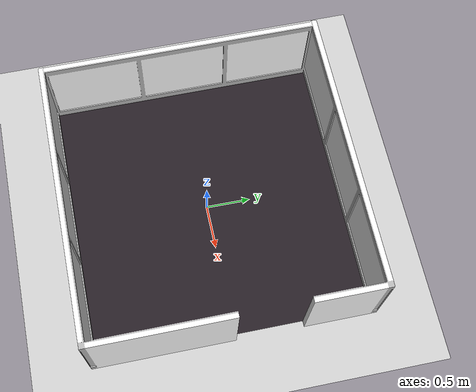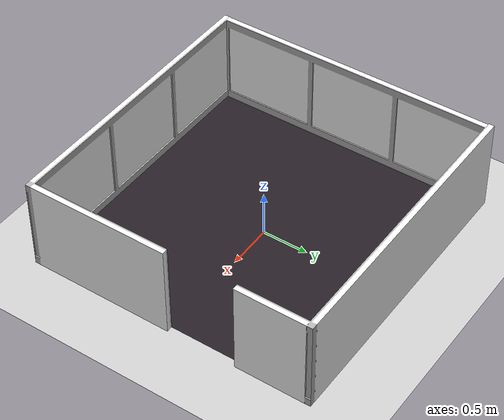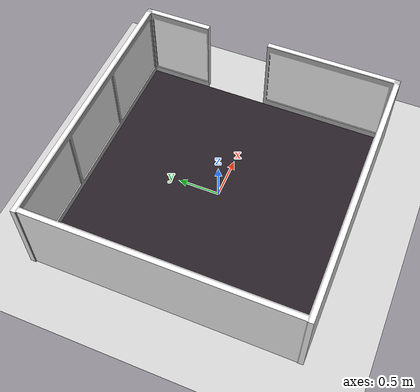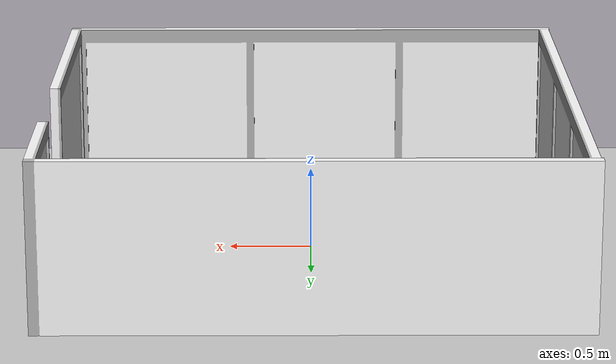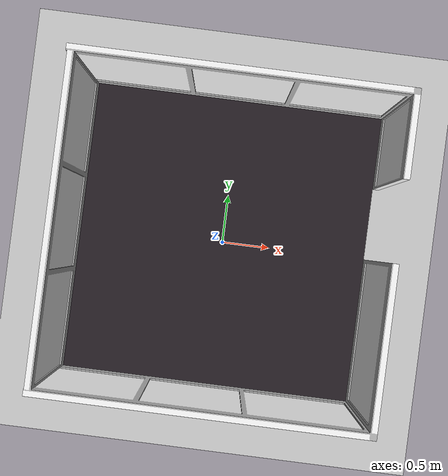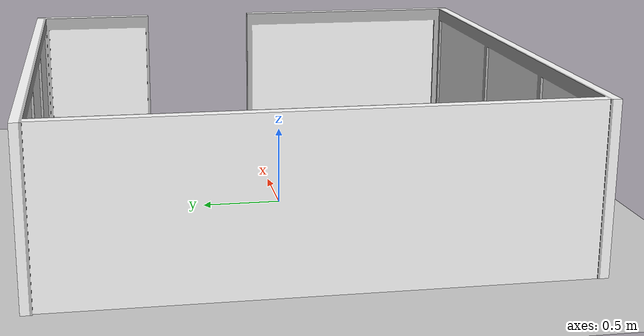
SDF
<?xml version="1.0" ?>
<sdf version="1.4">
  <world name="default">

    <include>
      <uri>model://ground_plane</uri>
      <pose>0 0 -0.005 0 0 0</pose>
    </include>

    <include>
      <uri>model://fetchit_arena</uri>
      <name>fetchit_arena1</name>
      <pose>0 0 0 0 0 0</pose>
    </include>

    <light name='user_point_light_0' type='point'>
      <pose frame=''>4.0 4.0 3.5 0 0 0</pose>
      <diffuse>0.7 0.7 0.7 1</diffuse>
      <specular>0.1 0.1 0.1 1</specular>
      <attenuation>
        <range>10</range>
        <constant>1.5</constant>
        <linear>0.01</linear>
        <quadratic>0.001</quadratic>
      </attenuation>
      <cast_shadows>0</cast_shadows>
      <direction>0 0 -1</direction>
    </light>

    <light name='user_point_light_1' type='point'>
      <pose frame=''>-4.0 4.0 3.5 0 0 0</pose>
      <diffuse>0.7 0.7 0.7 1</diffuse>
      <specular>0.1 0.1 0.1 1</specular>
      <attenuation>
        <range>10</range>
        <constant>1.5</constant>
        <linear>0.01</linear>
        <quadratic>0.001</quadratic>
      </attenuation>
      <cast_shadows>0</cast_shadows>
      <direction>0 0 -1</direction>
    </light>

    <light name='user_point_light_2' type='point'>
      <pose frame=''>-4.0 -4.0 3.5 0 0 0</pose>
      <diffuse>0.7 0.7 0.7 1</diffuse>
      <specular>0.1 0.1 0.1 1</specular>
      <attenuation>
        <range>10</range>
        <constant>1.5</constant>
        <linear>0.01</linear>
        <quadratic>0.001</quadratic>
      </attenuation>
      <cast_shadows>0</cast_shadows>
      <direction>0 0 -1</direction>
    </light>

    <light name='user_point_light_3' type='point'>
      <pose frame=''>4.0 -4.0 3.5 0 0 0</pose>
      <diffuse>0.7 0.7 0.7 1</diffuse>
      <specular>0.1 0.1 0.1 1</specular>
      <attenuation>
        <range>10</range>
        <constant>1.5</constant>
        <linear>0.01</linear>
        <quadratic>0.001</quadratic>
      </attenuation>
      <cast_shadows>0</cast_shadows>
      <direction>0 0 -1</direction>
    </light>

  </world>
</sdf>

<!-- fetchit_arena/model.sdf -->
<sdf version='1.4'>
  <model name="fetchit_simple_env">
      <static>1</static>
      <link name='link'>
        <visual name='visual'>
          <geometry>
            <mesh>
              <uri>model://fetchit_arena/meshes/fetchit_arena1.dae</uri>
              <scale>1 1 1</scale>
            </mesh>
          </geometry>
        </visual>
        <collision name='collision'>
          <geometry>
            <mesh>
              <uri>model://fetchit_arena/meshes/fetchit_arena1.dae</uri>
              <scale>1 1 1</scale>
            </mesh>
          </geometry>
          <surface>
            <friction>
              <ode>
                <mu>30.0</mu>
                <mu2>30.0</mu2>
              </ode>
            </friction>
            <contact>
              <ode>
                <soft_cfm>0</soft_cfm>
    	          <soft_erp>0.2</soft_erp>
    	          <kp>1e+13</kp>
    	          <kd>1</kd>
    	          <max_vel>0.01</max_vel>
    	          <min_depth>0</min_depth>
              </ode>
            </contact>
          </surface>
        </collision>
        <velocity_decay>
          <linear>0.000000</linear>
          <angular>0.000000</angular>
        </velocity_decay>
        <self_collide>0</self_collide>
        <kinematic>0</kinematic>
        <gravity>1</gravity>
      </link>
  </model>
</sdf>
